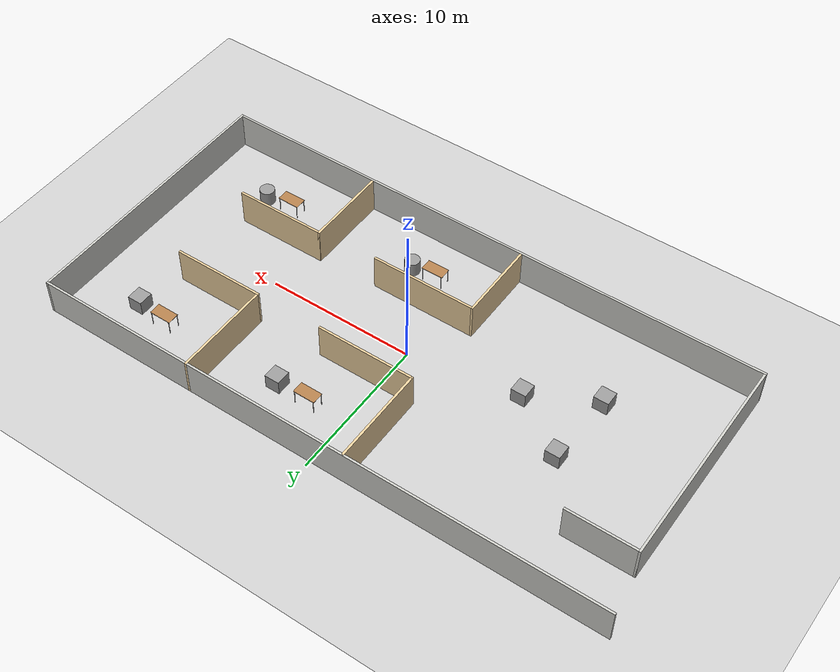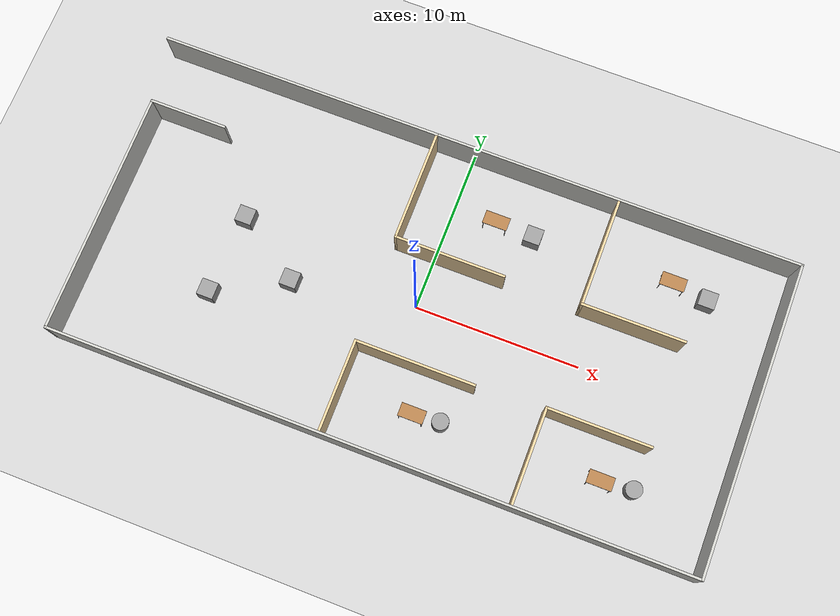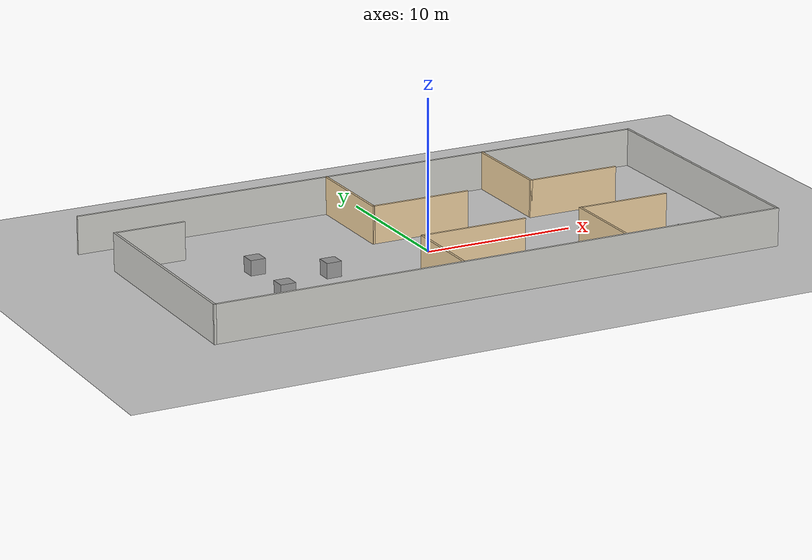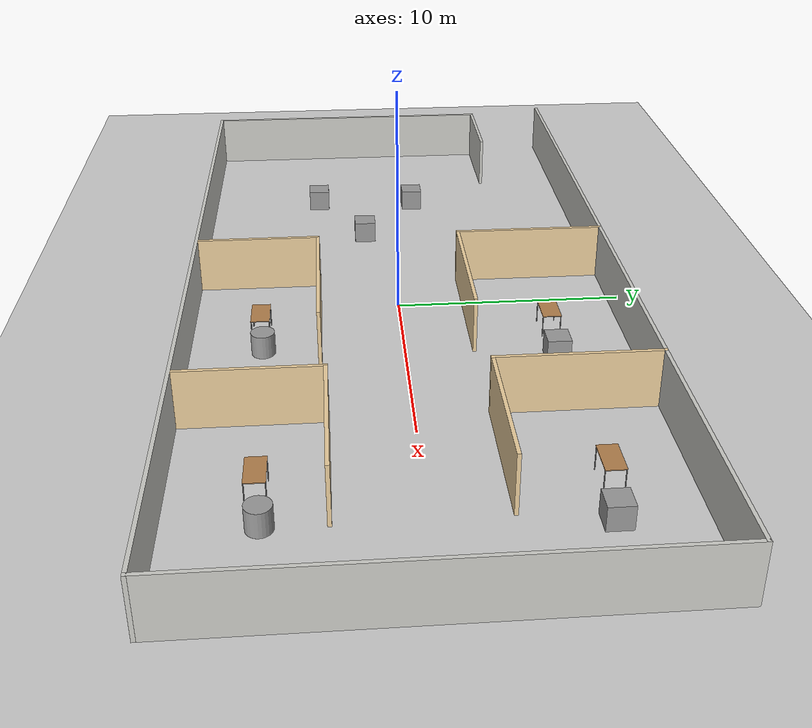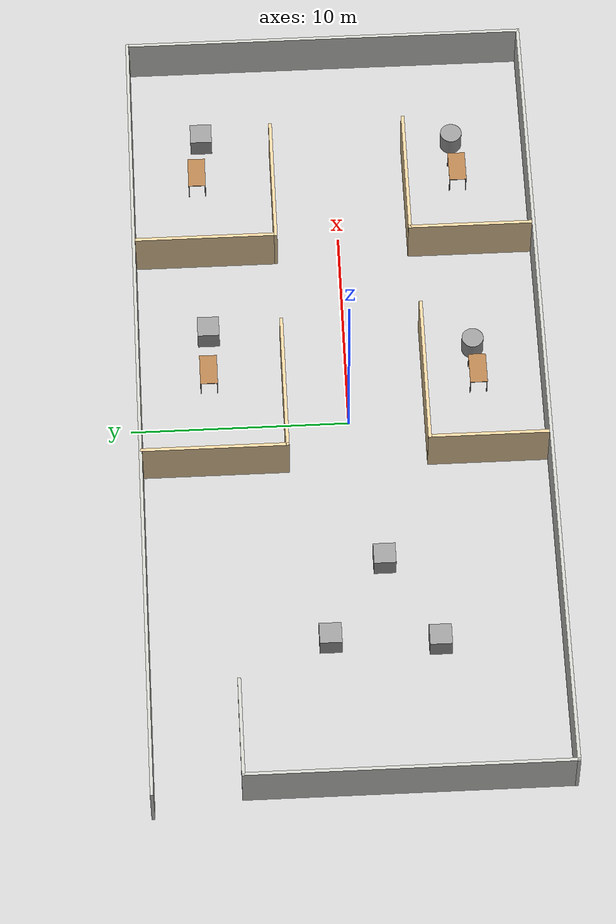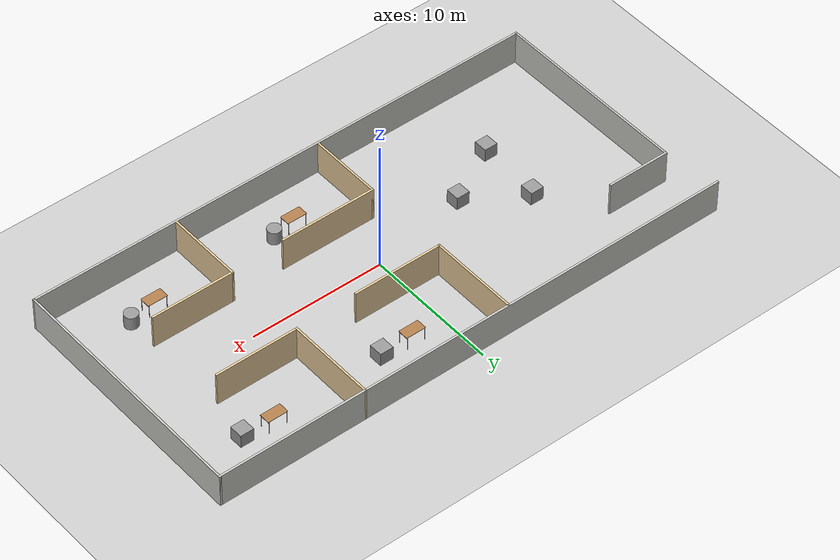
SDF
<sdf version="1.7">
 <world name="default">
  <light name="sun" type="directional">
   <pose>0 0 10 0 -0 0</pose>
   <diffuse>0.8 0.8 0.8 1</diffuse>
   <specular>0.2 0.2 0.2 1</specular>
   <attenuation>
    <range>1000</range>
    <constant>0.9</constant>
    <linear>0.01</linear>
    <quadratic>0.001</quadratic>
   </attenuation>
   <direction>-0.5 0.1 -0.9</direction>
   <spot><inner_angle>0</inner_angle><outer_angle>0</outer_angle><falloff>0</falloff></spot>
  </light>
  <model name="ground_plane">
   <static>1</static>
   <link name="link">
    <collision name="collision">
     <geometry><plane><normal>0 0 1</normal><size>100 100</size></plane></geometry>
     <surface>
      <contact><collide_bitmask>65535</collide_bitmask></contact>
      <friction><ode><mu>100</mu><mu2>50</mu2></ode></friction>
     </surface>
    </collision>
    <visual name="visual">
     <cast_shadows>0</cast_shadows>
     <geometry><plane><normal>0 0 1</normal><size>100 100</size></plane></geometry>
     <material>
      <script><uri>file://media/materials/scripts/gazebo.material</uri><name>Gazebo/Grey</name></script>
     </material>
    </visual>
   </link>
  </model>
  <gravity>0 0 -9.8</gravity>
  <magnetic_field>6e-06 2.3e-05 -4.2e-05</magnetic_field>
  <atmosphere type="adiabatic"/>
  <physics type="ode">
   <max_step_size>0.001</max_step_size>
   <real_time_factor>1</real_time_factor>
   <real_time_update_rate>1000</real_time_update_rate>
  </physics>
  <scene><ambient>0.4 0.4 0.4 1</ambient><background>0.7 0.7 0.7 1</background><shadows>1</shadows></scene>
  <spherical_coordinates>
   <surface_model>EARTH_WGS84</surface_model>
   <latitude_deg>0</latitude_deg>
   <longitude_deg>0</longitude_deg>
   <elevation>0</elevation>
   <heading_deg>0</heading_deg>
  </spherical_coordinates>
  <model name="final">
   <pose>0.160258 0.263509 0 0 -0 0</pose>
   <link name="Wall_28">
    <collision name="Wall_28_Collision">
     <geometry><box><size>39.5 0.15 2.5</size></box></geometry>
     <pose>0 0 1.25 0 -0 0</pose>
    </collision>
    <visual name="Wall_28_Visual">
     <pose>0 0 1.25 0 -0 0</pose>
     <geometry><box><size>39.5 0.15 2.5</size></box></geometry>
     <material>
      <script><uri>file://media/materials/scripts/gazebo.material</uri><name>Gazebo/CeilingTiled</name></script>
      <ambient>0.921569 0.807843 0.615686 1</ambient>
     </material>
     <meta><layer>0</layer></meta>
    </visual>
    <pose>-1e-06 9.3 0 0 -0 0</pose>
   </link>
   <link name="Wall_29">
    <collision name="Wall_29_Collision">
     <geometry><box><size>18.75 0.15 2.5</size></box></geometry>
     <pose>0 0 1.25 0 -0 0</pose>
    </collision>
    <visual name="Wall_29_Visual">
     <pose>0 0 1.25 0 -0 0</pose>
     <geometry><box><size>18.75 0.15 2.5</size></box></geometry>
     <material>
      <script><uri>file://media/materials/scripts/gazebo.material</uri><name>Gazebo/CeilingTiled</name></script>
      <ambient>0.921569 0.807843 0.615686 1</ambient>
     </material>
     <meta><layer>0</layer></meta>
    </visual>
    <pose>19.675 -0 0 0 -0 -1.5708</pose>
   </link>
   <link name="Wall_30">
    <collision name="Wall_30_Collision">
     <geometry><box><size>38.75 0.15 2.5</size></box></geometry>
     <pose>0 0 1.25 0 -0 0</pose>
    </collision>
    <visual name="Wall_30_Visual">
     <pose>0 0 1.25 0 -0 0</pose>
     <geometry><box><size>38.75 0.15 2.5</size></box></geometry>
     <material>
      <script><uri>file://media/materials/scripts/gazebo.material</uri><name>Gazebo/CeilingTiled</name></script>
      <ambient>0.921569 0.807843 0.615686 1</ambient>
     </material>
     <meta><layer>0</layer></meta>
    </visual>
    <pose>0.374999 -9.3 0 0 -0 3.14159</pose>
   </link>
   <link name="Wall_31">
    <collision name="Wall_31_Collision">
     <geometry><box><size>14.75 0.15 2.5</size></box></geometry>
     <pose>0 0 1.25 0 -0 0</pose>
    </collision>
    <visual name="Wall_31_Visual">
     <pose>0 0 1.25 0 -0 0</pose>
     <geometry><box><size>14.75 0.15 2.5</size></box></geometry>
     <material>
      <script><uri>file://media/materials/scripts/gazebo.material</uri><name>Gazebo/CeilingTiled</name></script>
      <ambient>0.921569 0.807843 0.615686 1</ambient>
     </material>
     <meta><layer>0</layer></meta>
    </visual>
    <pose>-18.925 -2 0 0 -0 1.5708</pose>
   </link>
   <link name="Wall_32">
    <collision name="Wall_32_Collision">
     <geometry><box><size>4.75 0.15 2.5</size></box></geometry>
     <pose>0 0 1.25 0 -0 0</pose>
    </collision>
    <visual name="Wall_32_Visual">
     <pose>0 0 1.25 0 -0 0</pose>
     <geometry><box><size>4.75 0.15 2.5</size></box></geometry>
     <material>
      <script><uri>file://media/materials/scripts/gazebo.material</uri><name>Gazebo/CeilingTiled</name></script>
      <ambient>0.921569 0.807843 0.615686 1</ambient>
     </material>
     <meta><layer>0</layer></meta>
    </visual>
    <pose>-16.625 5.3 0 0 -0 0</pose>
   </link>
   <link name="Wall_34">
    <collision name="Wall_34_Collision">
     <geometry><box><size>6.75 0.15 2.5</size></box></geometry>
     <pose>0 0 1.25 0 -0 0</pose>
    </collision>
    <visual name="Wall_34_Visual">
     <pose>0 0 1.25 0 -0 0</pose>
     <geometry><box><size>6.75 0.15 2.5</size></box></geometry>
     <material>
      <script><uri>file://media/materials/scripts/gazebo.material</uri><name>Gazebo/Grey</name></script>
      <ambient>0.921569 0.807843 0.615686 1</ambient>
     </material>
     <meta><layer>0</layer></meta>
    </visual>
    <pose>8.73373 6 0 0 -0 -1.5708</pose>
   </link>
   <link name="Wall_35">
    <collision name="Wall_35_Collision">
     <geometry><box><size>6.25 0.15 2.5</size></box></geometry>
     <pose>0 0 1.25 0 -0 0</pose>
    </collision>
    <visual name="Wall_35_Visual">
     <pose>0 0 1.25 0 -0 0</pose>
     <geometry><box><size>6.25 0.15 2.5</size></box></geometry>
     <material>
      <script><uri>file://media/materials/scripts/gazebo.material</uri><name>Gazebo/Grey</name></script>
      <ambient>0.921569 0.807843 0.615686 1</ambient>
     </material>
     <meta><layer>0</layer></meta>
    </visual>
    <pose>11.7837 2.7 0 0 -0 0</pose>
   </link>
   <link name="Wall_37">
    <collision name="Wall_37_Collision">
     <geometry><box><size>6.75 0.15 2.5</size></box></geometry>
     <pose>0 0 1.25 0 -0 0</pose>
    </collision>
    <visual name="Wall_37_Visual">
     <pose>0 0 1.25 0 -0 0</pose>
     <geometry><box><size>6.75 0.15 2.5</size></box></geometry>
     <material>
      <script><uri>file://media/materials/scripts/gazebo.material</uri><name>Gazebo/Grey</name></script>
      <ambient>0.921569 0.807843 0.615686 1</ambient>
     </material>
     <meta><layer>0</layer></meta>
    </visual>
    <pose>-2.52154 5.94589 0 0 -0 -1.5708</pose>
   </link>
   <link name="Wall_38">
    <collision name="Wall_38_Collision">
     <geometry><box><size>6.75 0.15 2.5</size></box></geometry>
     <pose>0 0 1.25 0 -0 0</pose>
    </collision>
    <visual name="Wall_38_Visual">
     <pose>0 0 1.25 0 -0 0</pose>
     <geometry><box><size>6.75 0.15 2.5</size></box></geometry>
     <material>
      <script><uri>file://media/materials/scripts/gazebo.material</uri><name>Gazebo/Grey</name></script>
      <ambient>0.921569 0.807843 0.615686 1</ambient>
     </material>
     <meta><layer>0</layer></meta>
    </visual>
    <pose>0.77846 2.64589 0 0 -0 0</pose>
   </link>
   <link name="Wall_41">
    <collision name="Wall_41_Collision">
     <geometry><box><size>5.75 0.15 2.5</size></box></geometry>
     <pose>0 0 1.25 0 -0 0</pose>
    </collision>
    <visual name="Wall_41_Visual">
     <pose>0 0 1.25 0 -0 0</pose>
     <geometry><box><size>5.75 0.15 2.5</size></box></geometry>
     <material>
      <script><uri>file://media/materials/scripts/gazebo.material</uri><name>Gazebo/Grey</name></script>
      <ambient>0.921569 0.807843 0.615686 1</ambient>
     </material>
     <meta><layer>0</layer></meta>
    </visual>
    <pose>8.84195 -6.35215 0 0 -0 1.5708</pose>
   </link>
   <link name="Wall_42">
    <collision name="Wall_42_Collision">
     <geometry><box><size>6.25 0.15 2.5</size></box></geometry>
     <pose>0 0 1.25 0 -0 0</pose>
    </collision>
    <visual name="Wall_42_Visual">
     <pose>0 0 1.25 0 -0 0</pose>
     <geometry><box><size>6.25 0.15 2.5</size></box></geometry>
     <material>
      <script><uri>file://media/materials/scripts/gazebo.material</uri><name>Gazebo/Grey</name></script>
      <ambient>0.921569 0.807843 0.615686 1</ambient>
     </material>
     <meta><layer>0</layer></meta>
    </visual>
    <pose>11.892 -3.55215 0 0 -0 0</pose>
   </link>
   <link name="Wall_44">
    <collision name="Wall_44_Collision">
     <geometry><box><size>5.5 0.15 2.5</size></box></geometry>
     <pose>0 0 1.25 0 -0 0</pose>
    </collision>
    <visual name="Wall_44_Visual">
     <pose>0 0 1.25 0 -0 0</pose>
     <geometry><box><size>5.5 0.15 2.5</size></box></geometry>
     <material>
      <script><uri>file://media/materials/scripts/gazebo.material</uri><name>Gazebo/Grey</name></script>
      <ambient>0.921569 0.807843 0.615686 1</ambient>
     </material>
     <meta><layer>0</layer></meta>
    </visual>
    <pose>-2.41332 -6.47715 0 0 -0 1.5708</pose>
   </link>
   <link name="Wall_45">
    <collision name="Wall_45_Collision">
     <geometry><box><size>7.25 0.15 2.5</size></box></geometry>
     <pose>0 0 1.25 0 -0 0</pose>
    </collision>
    <visual name="Wall_45_Visual">
     <pose>0 0 1.25 0 -0 0</pose>
     <geometry><box><size>7.25 0.15 2.5</size></box></geometry>
     <material>
      <script><uri>file://media/materials/scripts/gazebo.material</uri><name>Gazebo/Grey</name></script>
      <ambient>0.921569 0.807843 0.615686 1</ambient>
     </material>
     <meta><layer>0</layer></meta>
    </visual>
    <pose>1.13668 -3.80215 0 0 -0 0</pose>
   </link>
   <static>1</static>
  </model>
  <model name="table">
   <static>1</static>
   <link name="link">
    <collision name="surface">
     <pose>0 0 1 0 -0 0</pose>
     <geometry><box><size>1.5 0.8 0.03</size></box></geometry>
     <surface><friction><ode><mu>0.6</mu><mu2>0.6</mu2></ode></friction></surface>
    </collision>
    <visual name="visual1">
     <pose>0 0 1 0 -0 0</pose>
     <geometry><box><size>1.5 0.8 0.03</size></box></geometry>
     <material>
      <script><uri>file://media/materials/scripts/gazebo.material</uri><name>Gazebo/Wood</name></script>
     </material>
    </visual>
    <collision name="front_left_leg">
     <pose>0.68 0.38 0.5 0 -0 0</pose>
     <geometry><cylinder><radius>0.02</radius><length>1</length></cylinder></geometry>
    </collision>
    <visual name="front_left_leg">
     <pose>0.68 0.38 0.5 0 -0 0</pose>
     <geometry><cylinder><radius>0.02</radius><length>1</length></cylinder></geometry>
     <material>
      <script><uri>file://media/materials/scripts/gazebo.material</uri><name>Gazebo/Grey</name></script>
     </material>
    </visual>
    <collision name="front_right_leg">
     <pose>0.68 -0.38 0.5 0 -0 0</pose>
     <geometry><cylinder><radius>0.02</radius><length>1</length></cylinder></geometry>
    </collision>
    <visual name="front_right_leg">
     <pose>0.68 -0.38 0.5 0 -0 0</pose>
     <geometry><cylinder><radius>0.02</radius><length>1</length></cylinder></geometry>
     <material>
      <script><uri>file://media/materials/scripts/gazebo.material</uri><name>Gazebo/Grey</name></script>
     </material>
    </visual>
    <collision name="back_right_leg">
     <pose>-0.68 -0.38 0.5 0 -0 0</pose>
     <geometry><cylinder><radius>0.02</radius><length>1</length></cylinder></geometry>
    </collision>
    <visual name="back_right_leg">
     <pose>-0.68 -0.38 0.5 0 -0 0</pose>
     <geometry><cylinder><radius>0.02</radius><length>1</length></cylinder></geometry>
     <material>
      <script><uri>file://media/materials/scripts/gazebo.material</uri><name>Gazebo/Grey</name></script>
     </material>
    </visual>
    <collision name="back_left_leg">
     <pose>-0.68 0.38 0.5 0 -0 0</pose>
     <geometry><cylinder><radius>0.02</radius><length>1</length></cylinder></geometry>
    </collision>
    <visual name="back_left_leg">
     <pose>-0.68 0.38 0.5 0 -0 0</pose>
     <geometry><cylinder><radius>0.02</radius><length>1</length></cylinder></geometry>
     <material>
      <script><uri>file://media/materials/scripts/gazebo.material</uri><name>Gazebo/Grey</name></script>
     </material>
    </visual>
   </link>
   <pose>13.4478 6.51351 0 0 -0 0</pose>
  </model>
  <model name="table_0">
   <static>1</static>
   <link name="link">
    <collision name="surface">
     <pose>0 0 1 0 -0 0</pose>
     <geometry><box><size>1.5 0.8 0.03</size></box></geometry>
     <surface><friction><ode><mu>0.6</mu><mu2>0.6</mu2></ode></friction></surface>
    </collision>
    <visual name="visual1">
     <pose>0 0 1 0 -0 0</pose>
     <geometry><box><size>1.5 0.8 0.03</size></box></geometry>
     <material>
      <script><uri>file://media/materials/scripts/gazebo.material</uri><name>Gazebo/Wood</name></script>
     </material>
    </visual>
    <collision name="front_left_leg">
     <pose>0.68 0.38 0.5 0 -0 0</pose>
     <geometry><cylinder><radius>0.02</radius><length>1</length></cylinder></geometry>
    </collision>
    <visual name="front_left_leg">
     <pose>0.68 0.38 0.5 0 -0 0</pose>
     <geometry><cylinder><radius>0.02</radius><length>1</length></cylinder></geometry>
     <material>
      <script><uri>file://media/materials/scripts/gazebo.material</uri><name>Gazebo/Grey</name></script>
     </material>
    </visual>
    <collision name="front_right_leg">
     <pose>0.68 -0.38 0.5 0 -0 0</pose>
     <geometry><cylinder><radius>0.02</radius><length>1</length></cylinder></geometry>
    </collision>
    <visual name="front_right_leg">
     <pose>0.68 -0.38 0.5 0 -0 0</pose>
     <geometry><cylinder><radius>0.02</radius><length>1</length></cylinder></geometry>
     <material>
      <script><uri>file://media/materials/scripts/gazebo.material</uri><name>Gazebo/Grey</name></script>
     </material>
    </visual>
    <collision name="back_right_leg">
     <pose>-0.68 -0.38 0.5 0 -0 0</pose>
     <geometry><cylinder><radius>0.02</radius><length>1</length></cylinder></geometry>
    </collision>
    <visual name="back_right_leg">
     <pose>-0.68 -0.38 0.5 0 -0 0</pose>
     <geometry><cylinder><radius>0.02</radius><length>1</length></cylinder></geometry>
     <material>
      <script><uri>file://media/materials/scripts/gazebo.material</uri><name>Gazebo/Grey</name></script>
     </material>
    </visual>
    <collision name="back_left_leg">
     <pose>-0.68 0.38 0.5 0 -0 0</pose>
     <geometry><cylinder><radius>0.02</radius><length>1</length></cylinder></geometry>
    </collision>
    <visual name="back_left_leg">
     <pose>-0.68 0.38 0.5 0 -0 0</pose>
     <geometry><cylinder><radius>0.02</radius><length>1</length></cylinder></geometry>
     <material>
      <script><uri>file://media/materials/scripts/gazebo.material</uri><name>Gazebo/Grey</name></script>
     </material>
    </visual>
   </link>
   <pose>13.2084 -5.77574 0 0 -0 0</pose>
  </model>
  <model name="table_1">
   <static>1</static>
   <link name="link">
    <collision name="surface">
     <pose>0 0 1 0 -0 0</pose>
     <geometry><box><size>1.5 0.8 0.03</size></box></geometry>
     <surface><friction><ode><mu>0.6</mu><mu2>0.6</mu2></ode></friction></surface>
    </collision>
    <visual name="visual1">
     <pose>0 0 1 0 -0 0</pose>
     <geometry><box><size>1.5 0.8 0.03</size></box></geometry>
     <material>
      <script><uri>file://media/materials/scripts/gazebo.material</uri><name>Gazebo/Wood</name></script>
     </material>
    </visual>
    <collision name="front_left_leg">
     <pose>0.68 0.38 0.5 0 -0 0</pose>
     <geometry><cylinder><radius>0.02</radius><length>1</length></cylinder></geometry>
    </collision>
    <visual name="front_left_leg">
     <pose>0.68 0.38 0.5 0 -0 0</pose>
     <geometry><cylinder><radius>0.02</radius><length>1</length></cylinder></geometry>
     <material>
      <script><uri>file://media/materials/scripts/gazebo.material</uri><name>Gazebo/Grey</name></script>
     </material>
    </visual>
    <collision name="front_right_leg">
     <pose>0.68 -0.38 0.5 0 -0 0</pose>
     <geometry><cylinder><radius>0.02</radius><length>1</length></cylinder></geometry>
    </collision>
    <visual name="front_right_leg">
     <pose>0.68 -0.38 0.5 0 -0 0</pose>
     <geometry><cylinder><radius>0.02</radius><length>1</length></cylinder></geometry>
     <material>
      <script><uri>file://media/materials/scripts/gazebo.material</uri><name>Gazebo/Grey</name></script>
     </material>
    </visual>
    <collision name="back_right_leg">
     <pose>-0.68 -0.38 0.5 0 -0 0</pose>
     <geometry><cylinder><radius>0.02</radius><length>1</length></cylinder></geometry>
    </collision>
    <visual name="back_right_leg">
     <pose>-0.68 -0.38 0.5 0 -0 0</pose>
     <geometry><cylinder><radius>0.02</radius><length>1</length></cylinder></geometry>
     <material>
      <script><uri>file://media/materials/scripts/gazebo.material</uri><name>Gazebo/Grey</name></script>
     </material>
    </visual>
    <collision name="back_left_leg">
     <pose>-0.68 0.38 0.5 0 -0 0</pose>
     <geometry><cylinder><radius>0.02</radius><length>1</length></cylinder></geometry>
    </collision>
    <visual name="back_left_leg">
     <pose>-0.68 0.38 0.5 0 -0 0</pose>
     <geometry><cylinder><radius>0.02</radius><length>1</length></cylinder></geometry>
     <material>
      <script><uri>file://media/materials/scripts/gazebo.material</uri><name>Gazebo/Grey</name></script>
     </material>
    </visual>
   </link>
   <pose>2.60859 6.33948 0 0 -0 0</pose>
  </model>
  <model name="table_2">
   <static>1</static>
   <link name="link">
    <collision name="surface">
     <pose>0 0 1 0 -0 0</pose>
     <geometry><box><size>1.5 0.8 0.03</size></box></geometry>
     <surface><friction><ode><mu>0.6</mu><mu2>0.6</mu2></ode></friction></surface>
    </collision>
    <visual name="visual1">
     <pose>0 0 1 0 -0 0</pose>
     <geometry><box><size>1.5 0.8 0.03</size></box></geometry>
     <material>
      <script><uri>file://media/materials/scripts/gazebo.material</uri><name>Gazebo/Wood</name></script>
     </material>
    </visual>
    <collision name="front_left_leg">
     <pose>0.68 0.38 0.5 0 -0 0</pose>
     <geometry><cylinder><radius>0.02</radius><length>1</length></cylinder></geometry>
    </collision>
    <visual name="front_left_leg">
     <pose>0.68 0.38 0.5 0 -0 0</pose>
     <geometry><cylinder><radius>0.02</radius><length>1</length></cylinder></geometry>
     <material>
      <script><uri>file://media/materials/scripts/gazebo.material</uri><name>Gazebo/Grey</name></script>
     </material>
    </visual>
    <collision name="front_right_leg">
     <pose>0.68 -0.38 0.5 0 -0 0</pose>
     <geometry><cylinder><radius>0.02</radius><length>1</length></cylinder></geometry>
    </collision>
    <visual name="front_right_leg">
     <pose>0.68 -0.38 0.5 0 -0 0</pose>
     <geometry><cylinder><radius>0.02</radius><length>1</length></cylinder></geometry>
     <material>
      <script><uri>file://media/materials/scripts/gazebo.material</uri><name>Gazebo/Grey</name></script>
     </material>
    </visual>
    <collision name="back_right_leg">
     <pose>-0.68 -0.38 0.5 0 -0 0</pose>
     <geometry><cylinder><radius>0.02</radius><length>1</length></cylinder></geometry>
    </collision>
    <visual name="back_right_leg">
     <pose>-0.68 -0.38 0.5 0 -0 0</pose>
     <geometry><cylinder><radius>0.02</radius><length>1</length></cylinder></geometry>
     <material>
      <script><uri>file://media/materials/scripts/gazebo.material</uri><name>Gazebo/Grey</name></script>
     </material>
    </visual>
    <collision name="back_left_leg">
     <pose>-0.68 0.38 0.5 0 -0 0</pose>
     <geometry><cylinder><radius>0.02</radius><length>1</length></cylinder></geometry>
    </collision>
    <visual name="back_left_leg">
     <pose>-0.68 0.38 0.5 0 -0 0</pose>
     <geometry><cylinder><radius>0.02</radius><length>1</length></cylinder></geometry>
     <material>
      <script><uri>file://media/materials/scripts/gazebo.material</uri><name>Gazebo/Grey</name></script>
     </material>
    </visual>
   </link>
   <pose>2.08973 -6.03754 0 0 -0 0</pose>
  </model>
  <model name="unit_box">
   <pose>15.6505 6.24402 0.499995 0 1e-05 0</pose>
   <link name="link">
    <inertial>
     <mass>1</mass>
     <inertia>
      <ixx>0.166667</ixx>
      <ixy>0</ixy>
      <ixz>0</ixz>
      <iyy>0.166667</iyy>
      <iyz>0</iyz>
      <izz>0.166667</izz>
     </inertia>
    </inertial>
    <collision name="collision"><geometry><box><size>1 1 1</size></box></geometry></collision>
    <visual name="visual">
     <geometry><box><size>1 1 1</size></box></geometry>
     <material>
      <script><name>Gazebo/Grey</name><uri>file://media/materials/scripts/gazebo.material</uri></script>
     </material>
    </visual>
   </link>
  </model>
  <model name="unit_box_0">
   <pose>4.94321 6.27454 0.499995 -1e-05 0 0</pose>
   <link name="link">
    <inertial>
     <mass>1</mass>
     <inertia>
      <ixx>0.166667</ixx>
      <ixy>0</ixy>
      <ixz>0</ixz>
      <iyy>0.166667</iyy>
      <iyz>0</iyz>
      <izz>0.166667</izz>
     </inertia>
    </inertial>
    <collision name="collision"><geometry><box><size>1 1 1</size></box></geometry></collision>
    <visual name="visual">
     <geometry><box><size>1 1 1</size></box></geometry>
     <material>
      <script><name>Gazebo/Grey</name><uri>file://media/materials/scripts/gazebo.material</uri></script>
     </material>
    </visual>
   </link>
  </model>
  <model name="unit_box_1">
   <pose>-11.5739 -3.48873 0.499995 -1e-05 -0 -0</pose>
   <link name="link">
    <inertial>
     <mass>1</mass>
     <inertia>
      <ixx>0.166667</ixx>
      <ixy>0</ixy>
      <ixz>0</ixz>
      <iyy>0.166667</iyy>
      <iyz>0</iyz>
      <izz>0.166667</izz>
     </inertia>
    </inertial>
    <collision name="collision"><geometry><box><size>1 1 1</size></box></geometry></collision>
    <visual name="visual">
     <geometry><box><size>1 1 1</size></box></geometry>
     <material>
      <script><name>Gazebo/Grey</name><uri>file://media/materials/scripts/gazebo.material</uri></script>
     </material>
    </visual>
   </link>
  </model>
  <model name="unit_box_2">
   <pose>-11.2752 1.40728 0.499995 0 1e-05 0</pose>
   <link name="link">
    <inertial>
     <mass>1</mass>
     <inertia>
      <ixx>0.166667</ixx>
      <ixy>0</ixy>
      <ixz>0</ixz>
      <iyy>0.166667</iyy>
      <iyz>0</iyz>
      <izz>0.166667</izz>
     </inertia>
    </inertial>
    <collision name="collision"><geometry><box><size>1 1 1</size></box></geometry></collision>
    <visual name="visual">
     <geometry><box><size>1 1 1</size></box></geometry>
     <material>
      <script><name>Gazebo/Grey</name><uri>file://media/materials/scripts/gazebo.material</uri></script>
     </material>
    </visual>
   </link>
  </model>
  <model name="unit_cylinder">
   <pose>3.73284 -5.89752 0.499993 -3e-06 -3e-06 0</pose>
   <link name="link">
    <inertial>
     <mass>1</mass>
     <inertia><ixx>0.145833</ixx><ixy>0</ixy><ixz>0</ixz><iyy>0.145833</iyy><iyz>0</iyz><izz>0.125</izz></inertia>
    </inertial>
    <collision name="collision">
     <geometry><cylinder><radius>0.5</radius><length>1</length></cylinder></geometry>
    </collision>
    <visual name="visual">
     <geometry><cylinder><radius>0.5</radius><length>1</length></cylinder></geometry>
     <material>
      <script><name>Gazebo/Grey</name><uri>file://media/materials/scripts/gazebo.material</uri></script>
     </material>
    </visual>
   </link>
  </model>
  <model name="unit_cylinder_0">
   <pose>15.1074 -5.60203 0.499997 3e-06 4e-06 -0</pose>
   <link name="link">
    <inertial>
     <mass>1</mass>
     <inertia><ixx>0.145833</ixx><ixy>0</ixy><ixz>0</ixz><iyy>0.145833</iyy><iyz>0</iyz><izz>0.125</izz></inertia>
    </inertial>
    <collision name="collision">
     <geometry><cylinder><radius>0.5</radius><length>1</length></cylinder></geometry>
    </collision>
    <visual name="visual">
     <geometry><cylinder><radius>0.5</radius><length>1</length></cylinder></geometry>
     <material>
      <script><name>Gazebo/Grey</name><uri>file://media/materials/scripts/gazebo.material</uri></script>
     </material>
    </visual>
   </link>
  </model>
  <model name="unit_box_3">
   <pose>-7.36161 -1.21591 0.499995 -1e-05 -0 0</pose>
   <link name="link">
    <inertial>
     <mass>1</mass>
     <inertia>
      <ixx>0.166667</ixx>
      <ixy>0</ixy>
      <ixz>0</ixz>
      <iyy>0.166667</iyy>
      <iyz>0</iyz>
      <izz>0.166667</izz>
     </inertia>
    </inertial>
    <collision name="collision"><geometry><box><size>1 1 1</size></box></geometry></collision>
    <visual name="visual">
     <geometry><box><size>1 1 1</size></box></geometry>
     <material>
      <script><name>Gazebo/Grey</name><uri>file://media/materials/scripts/gazebo.material</uri></script>
     </material>
    </visual>
   </link>
  </model>
 </world>
</sdf>
